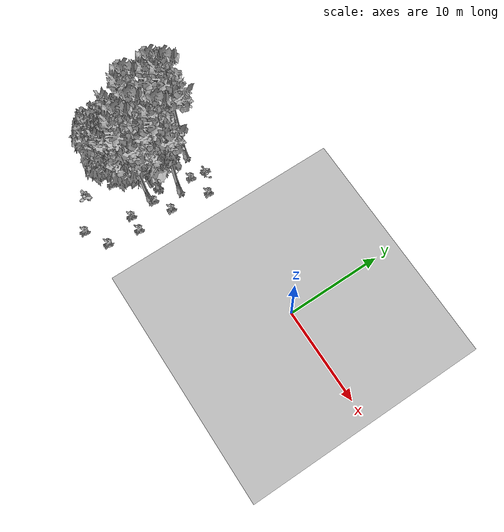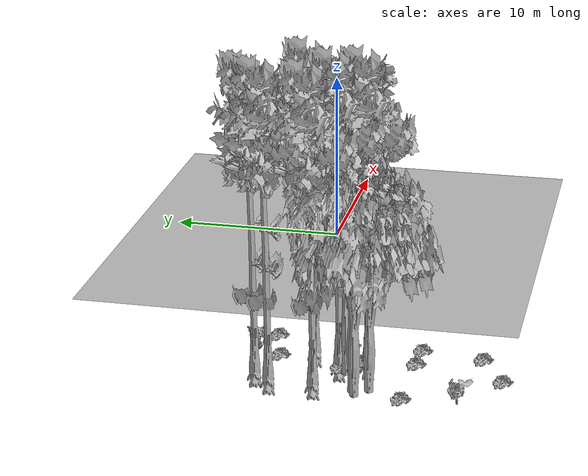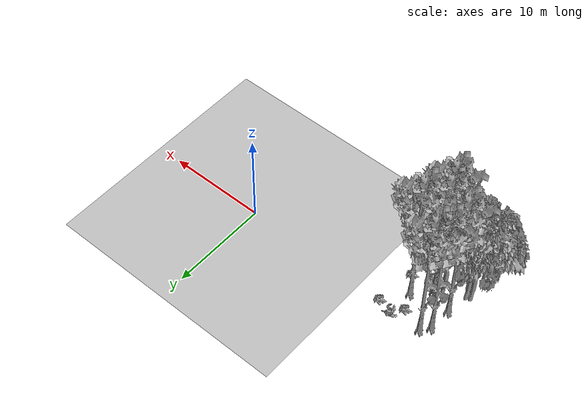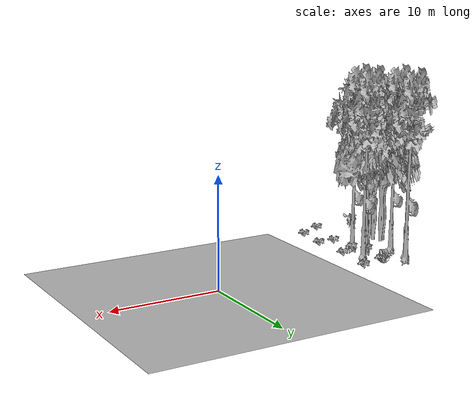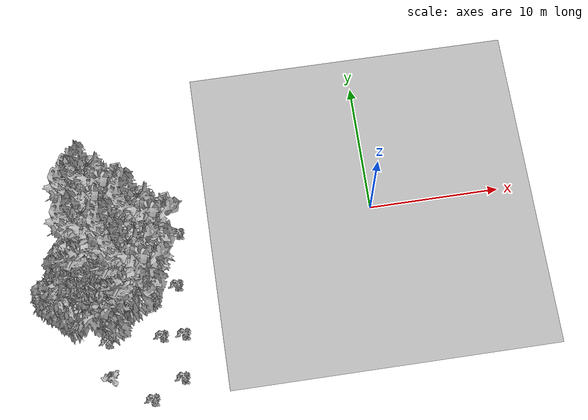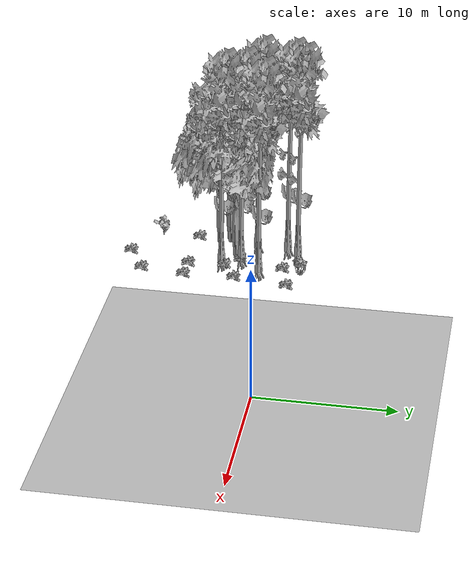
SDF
<sdf version="1.7">
 <world name="default">
  <model name="ground_plane">
   <static>1</static>
   <link name="link">
    <collision name="collision">
     <pose>-50 0 0 0 -0 0</pose>
     <geometry><plane><normal>0 0 1</normal><size>80 80</size></plane></geometry>
     <surface><contact><ode><min_depth>0.01</min_depth><max_vel>0</max_vel></ode></contact></surface>
    </collision>
    <visual name="grass">
     <cast_shadows>0</cast_shadows>
     <geometry>
      <mesh>
       <scale>0.46714285714285714 0.46714285714285714 0.1</scale>
       <uri>file://grass_plane/meshes/grass_plane.dae</uri>
      </mesh>
     </geometry>
    </visual>
   </link>
  </model>
  <model name="Tree 130">
   <static>1</static>
   <pose>-18.145295068226737 -3.892946584892897 0 1.57079 -0 0</pose>
   <link name="link">
    <collision name="collision">
     <geometry><mesh><scale>3.5 5 3.5</scale><uri>model://tree_9/meshes/tree_9.obj</uri></mesh></geometry>
    </collision>
    <visual name="visual">
     <geometry><mesh><scale>3.5 5 3.5</scale><uri>model://tree_9/meshes/tree_9.obj</uri></mesh></geometry>
    </visual>
   </link>
  </model>
  <model name="Tree 218">
   <static>1</static>
   <pose>-16.669267428756555 -2.3151240081605238 0 1.57079 -0 0</pose>
   <link name="link">
    <collision name="collision">
     <geometry><mesh><scale>3.5 5 3.5</scale><uri>model://tree_9/meshes/tree_9.obj</uri></mesh></geometry>
    </collision>
    <visual name="visual">
     <geometry><mesh><scale>3.5 5 3.5</scale><uri>model://tree_9/meshes/tree_9.obj</uri></mesh></geometry>
    </visual>
   </link>
  </model>
  <model name="Tree 251">
   <static>1</static>
   <pose>-19.637185446590635 0.23470449237517954 0 1.57079 -0 0</pose>
   <link name="link">
    <collision name="collision">
     <geometry><mesh><scale>3.5 5 3.5</scale><uri>model://tree_9/meshes/tree_9.obj</uri></mesh></geometry>
    </collision>
    <visual name="visual">
     <geometry><mesh><scale>3.5 5 3.5</scale><uri>model://tree_9/meshes/tree_9.obj</uri></mesh></geometry>
    </visual>
   </link>
  </model>
  <model name="Tree 292">
   <static>1</static>
   <pose>-21.26853431844493 -5.299004685820293 0 1.57079 -0 0</pose>
   <link name="link">
    <collision name="collision">
     <geometry><mesh><scale>3.5 5 3.5</scale><uri>model://tree_2/meshes/tree_2.obj</uri></mesh></geometry>
    </collision>
    <visual name="visual">
     <geometry><mesh><scale>3.5 5 3.5</scale><uri>model://tree_2/meshes/tree_2.obj</uri></mesh></geometry>
    </visual>
   </link>
  </model>
  <model name="Tree 377">
   <static>1</static>
   <pose>-18.865046157295872 -4.427339930061372 0 1.57079 -0 0</pose>
   <link name="link">
    <collision name="collision">
     <geometry><mesh><scale>3.5 5 3.5</scale><uri>model://tree_2/meshes/tree_2.obj</uri></mesh></geometry>
    </collision>
    <visual name="visual">
     <geometry><mesh><scale>3.5 5 3.5</scale><uri>model://tree_2/meshes/tree_2.obj</uri></mesh></geometry>
    </visual>
   </link>
  </model>
  <model name="Tree 382">
   <static>1</static>
   <pose>-20.622692096624473 -5.944605528663267 0 1.57079 -0 0</pose>
   <link name="link">
    <collision name="collision">
     <geometry><mesh><scale>3.5 5 3.5</scale><uri>model://tree_2/meshes/tree_2.obj</uri></mesh></geometry>
    </collision>
    <visual name="visual">
     <geometry><mesh><scale>3.5 5 3.5</scale><uri>model://tree_2/meshes/tree_2.obj</uri></mesh></geometry>
    </visual>
   </link>
  </model>
  <model name="Tree 389">
   <static>1</static>
   <pose>-17.599097155785778 -5.315001854106939 0 1.57079 -0 0</pose>
   <link name="link">
    <collision name="collision">
     <geometry><mesh><scale>3.5 5 3.5</scale><uri>model://tree_9/meshes/tree_9.obj</uri></mesh></geometry>
    </collision>
    <visual name="visual">
     <geometry><mesh><scale>3.5 5 3.5</scale><uri>model://tree_9/meshes/tree_9.obj</uri></mesh></geometry>
    </visual>
   </link>
  </model>
  <model name="Tree 433">
   <static>1</static>
   <pose>-20.302526124959712 -0.6372261240883859 0 1.57079 -0 0</pose>
   <link name="link">
    <collision name="collision">
     <geometry><mesh><scale>3.5 5 3.5</scale><uri>model://tree_9/meshes/tree_9.obj</uri></mesh></geometry>
    </collision>
    <visual name="visual">
     <geometry><mesh><scale>3.5 5 3.5</scale><uri>model://tree_9/meshes/tree_9.obj</uri></mesh></geometry>
    </visual>
   </link>
  </model>
  <model name="Tree 471">
   <static>1</static>
   <pose>-20.40293524431174 -2.994658965321058 0 1.57079 -0 0</pose>
   <link name="link">
    <collision name="collision">
     <geometry><mesh><scale>3.5 5 3.5</scale><uri>model://tree_9/meshes/tree_9.obj</uri></mesh></geometry>
    </collision>
    <visual name="visual">
     <geometry><mesh><scale>3.5 5 3.5</scale><uri>model://tree_9/meshes/tree_9.obj</uri></mesh></geometry>
    </visual>
   </link>
  </model>
  <model name="Tree 546">
   <static>1</static>
   <pose>-20.89421596334105 -5.132562382145906 0 1.57079 -0 0</pose>
   <link name="link">
    <collision name="collision">
     <geometry><mesh><scale>3.5 5 3.5</scale><uri>model://tree_2/meshes/tree_2.obj</uri></mesh></geometry>
    </collision>
    <visual name="visual">
     <geometry><mesh><scale>3.5 5 3.5</scale><uri>model://tree_2/meshes/tree_2.obj</uri></mesh></geometry>
    </visual>
   </link>
  </model>
  <model name="Bush 110">
   <static>1</static>
   <pose>-17.434912914538717 -0.6149074706311808 0 1.57079 -0 0</pose>
   <link name="link">
    <collision name="collision">
     <geometry><mesh><scale>2 2 2</scale><uri>model://bush_2/meshes/bush_2.obj</uri></mesh></geometry>
     <surface><contact><collide_without_contact>false</collide_without_contact></contact></surface>
    </collision>
    <visual name="visual">
     <geometry><mesh><scale>2 2 2</scale><uri>model://bush_2/meshes/bush_2.obj</uri></mesh></geometry>
    </visual>
   </link>
  </model>
  <model name="Bush 113">
   <static>1</static>
   <pose>-17.36448711820229 -5.0633563742871175 0 1.57079 -0 0</pose>
   <link name="link">
    <collision name="collision">
     <geometry><mesh><scale>2 2 2</scale><uri>model://bush_2/meshes/bush_2.obj</uri></mesh></geometry>
     <surface><contact><collide_without_contact>false</collide_without_contact></contact></surface>
    </collision>
    <visual name="visual">
     <geometry><mesh><scale>2 2 2</scale><uri>model://bush_2/meshes/bush_2.obj</uri></mesh></geometry>
    </visual>
   </link>
  </model>
  <model name="Bush 136">
   <static>1</static>
   <pose>-15.935997277790996 -11.162231043507546 0 1.57079 -0 0</pose>
   <link name="link">
    <collision name="collision">
     <geometry><mesh><scale>2 2 2</scale><uri>model://bush_2/meshes/bush_2.obj</uri></mesh></geometry>
     <surface><contact><collide_without_contact>false</collide_without_contact></contact></surface>
    </collision>
    <visual name="visual">
     <geometry><mesh><scale>2 2 2</scale><uri>model://bush_2/meshes/bush_2.obj</uri></mesh></geometry>
    </visual>
   </link>
  </model>
  <model name="Bush 143">
   <static>1</static>
   <pose>-17.157580116129925 -7.791942385478315 0 1.57079 -0 0</pose>
   <link name="link">
    <collision name="collision">
     <geometry><mesh><scale>2 2 2</scale><uri>model://bush_2/meshes/bush_2.obj</uri></mesh></geometry>
     <surface><contact><collide_without_contact>false</collide_without_contact></contact></surface>
    </collision>
    <visual name="visual">
     <geometry><mesh><scale>2 2 2</scale><uri>model://bush_2/meshes/bush_2.obj</uri></mesh></geometry>
    </visual>
   </link>
  </model>
  <model name="Bush 187">
   <static>1</static>
   <pose>-20.975360793252545 -10.478680136284684 0 1.57079 -0 0</pose>
   <link name="link">
    <collision name="collision">
     <geometry><mesh><scale>2 2 2</scale><uri>model://bush_0/meshes/bush_0.obj</uri></mesh></geometry>
     <surface><contact><collide_without_contact>false</collide_without_contact></contact></surface>
    </collision>
    <visual name="visual">
     <geometry><mesh><scale>2 2 2</scale><uri>model://bush_0/meshes/bush_0.obj</uri></mesh></geometry>
    </visual>
   </link>
  </model>
  <model name="Bush 205">
   <static>1</static>
   <pose>-21.256703340473802 -7.685367003647372 0 1.57079 -0 0</pose>
   <link name="link">
    <collision name="collision">
     <geometry><mesh><scale>2 2 2</scale><uri>model://bush_2/meshes/bush_2.obj</uri></mesh></geometry>
     <surface><contact><collide_without_contact>false</collide_without_contact></contact></surface>
    </collision>
    <visual name="visual">
     <geometry><mesh><scale>2 2 2</scale><uri>model://bush_2/meshes/bush_2.obj</uri></mesh></geometry>
    </visual>
   </link>
  </model>
  <model name="Bush 344">
   <static>1</static>
   <pose>-15.500274731402566 -7.8726180506940295 0 1.57079 -0 0</pose>
   <link name="link">
    <collision name="collision">
     <geometry><mesh><scale>2 2 2</scale><uri>model://bush_2/meshes/bush_2.obj</uri></mesh></geometry>
     <surface><contact><collide_without_contact>false</collide_without_contact></contact></surface>
    </collision>
    <visual name="visual">
     <geometry><mesh><scale>2 2 2</scale><uri>model://bush_2/meshes/bush_2.obj</uri></mesh></geometry>
    </visual>
   </link>
  </model>
  <model name="Bush 404">
   <static>1</static>
   <pose>-18.332167616305394 -12.470961467052177 0 1.57079 -0 0</pose>
   <link name="link">
    <collision name="collision">
     <geometry><mesh><scale>2 2 2</scale><uri>model://bush_2/meshes/bush_2.obj</uri></mesh></geometry>
     <surface><contact><collide_without_contact>false</collide_without_contact></contact></surface>
    </collision>
    <visual name="visual">
     <geometry><mesh><scale>2 2 2</scale><uri>model://bush_2/meshes/bush_2.obj</uri></mesh></geometry>
    </visual>
   </link>
  </model>
  <model name="Bush 405">
   <static>1</static>
   <pose>-15.051344219332858 0.017483716929021398 0 1.57079 -0 0</pose>
   <link name="link">
    <collision name="collision">
     <geometry><mesh><scale>2 2 2</scale><uri>model://bush_2/meshes/bush_2.obj</uri></mesh></geometry>
     <surface><contact><collide_without_contact>false</collide_without_contact></contact></surface>
    </collision>
    <visual name="visual">
     <geometry><mesh><scale>2 2 2</scale><uri>model://bush_2/meshes/bush_2.obj</uri></mesh></geometry>
    </visual>
   </link>
  </model>
  <model name="Bush 429">
   <static>1</static>
   <pose>-18.33661716880028 -3.980119940386615 0 1.57079 -0 0</pose>
   <link name="link">
    <collision name="collision">
     <geometry><mesh><scale>2 2 2</scale><uri>model://bush_2/meshes/bush_2.obj</uri></mesh></geometry>
     <surface><contact><collide_without_contact>false</collide_without_contact></contact></surface>
    </collision>
    <visual name="visual">
     <geometry><mesh><scale>2 2 2</scale><uri>model://bush_2/meshes/bush_2.obj</uri></mesh></geometry>
    </visual>
   </link>
  </model>
  <model name="Bush 573">
   <static>1</static>
   <pose>-15.607271397421083 -4.034188813930413 0 1.57079 -0 0</pose>
   <link name="link">
    <collision name="collision">
     <geometry><mesh><scale>2 2 2</scale><uri>model://bush_2/meshes/bush_2.obj</uri></mesh></geometry>
     <surface><contact><collide_without_contact>false</collide_without_contact></contact></surface>
    </collision>
    <visual name="visual">
     <geometry><mesh><scale>2 2 2</scale><uri>model://bush_2/meshes/bush_2.obj</uri></mesh></geometry>
    </visual>
   </link>
  </model>
  <model name="Bush 583">
   <static>1</static>
   <pose>-16.768184380907588 0.7658829781407377 0 1.57079 -0 0</pose>
   <link name="link">
    <collision name="collision">
     <geometry><mesh><scale>2 2 2</scale><uri>model://bush_4/meshes/bush_4.obj</uri></mesh></geometry>
     <surface><contact><collide_without_contact>false</collide_without_contact></contact></surface>
    </collision>
    <visual name="visual">
     <geometry><mesh><scale>2 2 2</scale><uri>model://bush_4/meshes/bush_4.obj</uri></mesh></geometry>
    </visual>
   </link>
  </model>
 </world>
</sdf>
